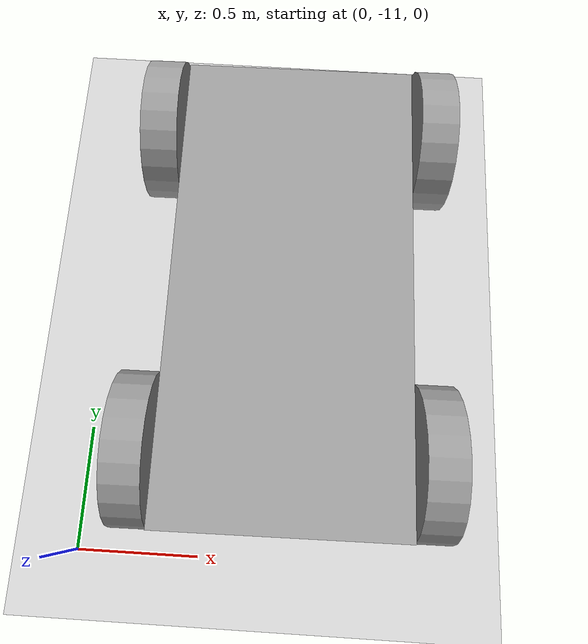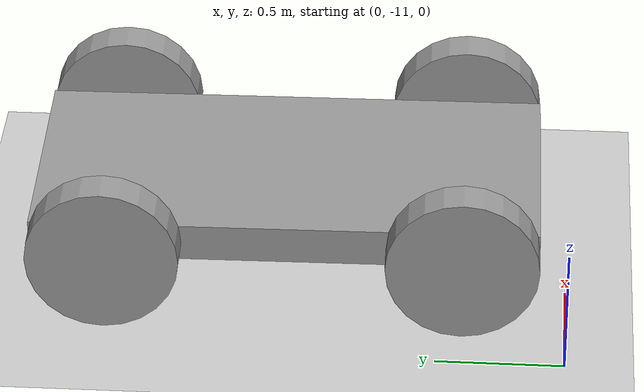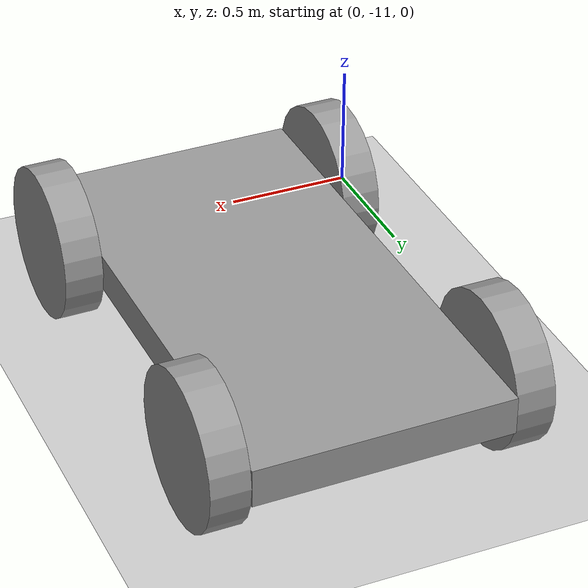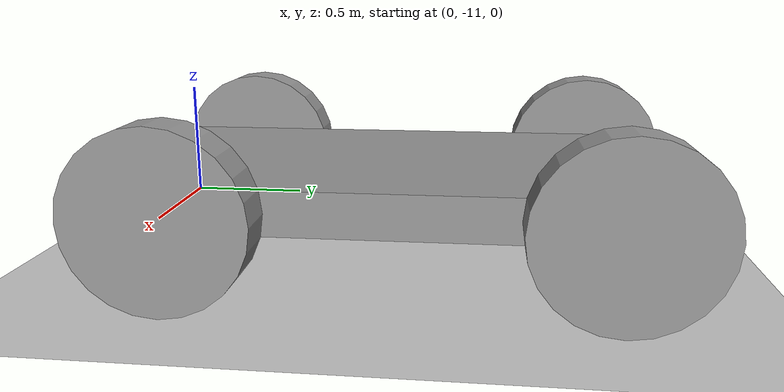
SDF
<sdf version="1.6">
 <world name="default">
  <model name="ground_plane">
   <static>1</static>
   <link name="link">
    <collision name="collision">
     <geometry><plane><normal>0 0 1</normal><size>100 100</size></plane></geometry>
     <surface>
      <contact><collide_bitmask>65535</collide_bitmask></contact>
      <friction><ode><mu>100</mu><mu2>50</mu2></ode></friction>
     </surface>
    </collision>
    <visual name="visual">
     <cast_shadows>0</cast_shadows>
     <geometry><plane><normal>0 0 1</normal><size>100 100</size></plane></geometry>
     <material>
      <script><uri>file://media/materials/scripts/gazebo.material</uri><name>Gazebo/Grey</name></script>
     </material>
    </visual>
   </link>
  </model>
  <model name="myrobot_project1_0">
   <link name="link_0">
    <inertial>
     <mass>1</mass>
     <inertia>
      <ixx>0.166667</ixx>
      <ixy>0</ixy>
      <ixz>0</ixz>
      <iyy>0.166667</iyy>
      <iyz>0</iyz>
      <izz>0.166667</izz>
     </inertia>
    </inertial>
    <pose>-4.00666 -6.32135 0.247721 0 -0 0</pose>
    <visual name="visual">
     <geometry><box><size>1 2 0.15</size></box></geometry>
     <material>
      <lighting>1</lighting>
      <script><uri>file://media/materials/scripts/gazebo.material</uri><name>Gazebo/Grey</name></script>
      <shader type="pixel"><normal_map>__default__</normal_map></shader>
      <ambient>0.3 0.3 0.3 1</ambient>
      <diffuse>0.7 0.7 0.7 1</diffuse>
      <specular>0.01 0.01 0.01 1</specular>
      <emissive>0 0 0 1</emissive>
     </material>
    </visual>
    <collision name="collision">
     <geometry><box><size>1 2 0.15</size></box></geometry>
     <surface>
      <friction>
       <ode><mu>1</mu><mu2>1</mu2><fdir1>0 0 0</fdir1><slip1>0</slip1><slip2>0</slip2></ode>
       <torsional>
        <coefficient>1</coefficient>
        <patch_radius>0</patch_radius>
        <surface_radius>0</surface_radius>
        <use_patch_radius>1</use_patch_radius>
        <ode><slip>0</slip></ode>
       </torsional>
      </friction>
      <bounce><restitution_coefficient>0</restitution_coefficient><threshold>1e+06</threshold></bounce>
      <contact>
       <collide_without_contact>0</collide_without_contact>
       <collide_without_contact_bitmask>1</collide_without_contact_bitmask>
       <collide_bitmask>1</collide_bitmask>
       <ode>
        <soft_cfm>0</soft_cfm>
        <soft_erp>0.2</soft_erp>
        <kp>1e+13</kp>
        <kd>1</kd>
        <max_vel>0.01</max_vel>
        <min_depth>0</min_depth>
       </ode>
       <bullet>
        <split_impulse>1</split_impulse>
        <split_impulse_penetration_threshold>-0.01</split_impulse_penetration_threshold>
        <soft_cfm>0</soft_cfm>
        <soft_erp>0.2</soft_erp>
        <kp>1e+13</kp>
        <kd>1</kd>
       </bullet>
      </contact>
     </surface>
    </collision>
   </link>
   <link name="link_1">
    <inertial>
     <mass>1</mass>
     <inertia><ixx>0.145833</ixx><ixy>0</ixy><ixz>0</ixz><iyy>0.145833</iyy><iyz>0</iyz><izz>0.125</izz></inertia>
    </inertial>
    <pose>-4.58166 -5.62135 0.247721 6e-06 1.5707 6e-06</pose>
    <visual name="visual">
     <geometry><cylinder><radius>0.3</radius><length>0.15</length></cylinder></geometry>
     <material>
      <lighting>1</lighting>
      <script><uri>file://media/materials/scripts/gazebo.material</uri><name>Gazebo/Grey</name></script>
      <shader type="pixel"><normal_map>__default__</normal_map></shader>
      <ambient>0.3 0.3 0.3 1</ambient>
      <diffuse>0.7 0.7 0.7 1</diffuse>
      <specular>0.01 0.01 0.01 1</specular>
      <emissive>0 0 0 1</emissive>
     </material>
    </visual>
    <collision name="collision">
     <geometry><cylinder><radius>0.3</radius><length>0.15</length></cylinder></geometry>
     <surface>
      <friction>
       <ode><mu>1</mu><mu2>1</mu2><fdir1>0 0 0</fdir1><slip1>0</slip1><slip2>0</slip2></ode>
       <torsional>
        <coefficient>1</coefficient>
        <patch_radius>0</patch_radius>
        <surface_radius>0</surface_radius>
        <use_patch_radius>1</use_patch_radius>
        <ode><slip>0</slip></ode>
       </torsional>
      </friction>
      <bounce><restitution_coefficient>0</restitution_coefficient><threshold>1e+06</threshold></bounce>
      <contact>
       <collide_without_contact>0</collide_without_contact>
       <collide_without_contact_bitmask>1</collide_without_contact_bitmask>
       <collide_bitmask>1</collide_bitmask>
       <ode>
        <soft_cfm>0</soft_cfm>
        <soft_erp>0.2</soft_erp>
        <kp>1e+13</kp>
        <kd>1</kd>
        <max_vel>0.01</max_vel>
        <min_depth>0</min_depth>
       </ode>
       <bullet>
        <split_impulse>1</split_impulse>
        <split_impulse_penetration_threshold>-0.01</split_impulse_penetration_threshold>
        <soft_cfm>0</soft_cfm>
        <soft_erp>0.2</soft_erp>
        <kp>1e+13</kp>
        <kd>1</kd>
       </bullet>
      </contact>
     </surface>
    </collision>
   </link>
   <link name="link_1_clone">
    <inertial>
     <mass>1</mass>
     <inertia><ixx>0.145833</ixx><ixy>0</ixy><ixz>0</ixz><iyy>0.145833</iyy><iyz>0</iyz><izz>0.125</izz></inertia>
    </inertial>
    <pose>-3.43166 -5.62135 0.247721 6e-06 1.5707 6e-06</pose>
    <visual name="visual">
     <geometry><cylinder><radius>0.3</radius><length>0.15</length></cylinder></geometry>
     <material>
      <lighting>1</lighting>
      <script><uri>file://media/materials/scripts/gazebo.material</uri><name>Gazebo/Grey</name></script>
      <shader type="pixel"><normal_map>__default__</normal_map></shader>
      <ambient>0.3 0.3 0.3 1</ambient>
      <diffuse>0.7 0.7 0.7 1</diffuse>
      <specular>0.01 0.01 0.01 1</specular>
      <emissive>0 0 0 1</emissive>
     </material>
    </visual>
    <collision name="collision">
     <geometry><cylinder><radius>0.3</radius><length>0.15</length></cylinder></geometry>
     <surface>
      <friction>
       <ode><mu>1</mu><mu2>1</mu2><fdir1>0 0 0</fdir1><slip1>0</slip1><slip2>0</slip2></ode>
       <torsional>
        <coefficient>1</coefficient>
        <patch_radius>0</patch_radius>
        <surface_radius>0</surface_radius>
        <use_patch_radius>1</use_patch_radius>
        <ode><slip>0</slip></ode>
       </torsional>
      </friction>
      <bounce><restitution_coefficient>0</restitution_coefficient><threshold>1e+06</threshold></bounce>
      <contact>
       <collide_without_contact>0</collide_without_contact>
       <collide_without_contact_bitmask>1</collide_without_contact_bitmask>
       <collide_bitmask>1</collide_bitmask>
       <ode>
        <soft_cfm>0</soft_cfm>
        <soft_erp>0.2</soft_erp>
        <kp>1e+13</kp>
        <kd>1</kd>
        <max_vel>0.01</max_vel>
        <min_depth>0</min_depth>
       </ode>
       <bullet>
        <split_impulse>1</split_impulse>
        <split_impulse_penetration_threshold>-0.01</split_impulse_penetration_threshold>
        <soft_cfm>0</soft_cfm>
        <soft_erp>0.2</soft_erp>
        <kp>1e+13</kp>
        <kd>1</kd>
       </bullet>
      </contact>
     </surface>
    </collision>
   </link>
   <link name="link_1_clone_0">
    <inertial>
     <mass>1</mass>
     <inertia><ixx>0.145833</ixx><ixy>0</ixy><ixz>0</ixz><iyy>0.145833</iyy><iyz>0</iyz><izz>0.125</izz></inertia>
    </inertial>
    <pose>-3.43166 -7.02135 0.247721 6e-06 1.5707 6e-06</pose>
    <visual name="visual">
     <geometry><cylinder><radius>0.3</radius><length>0.15</length></cylinder></geometry>
     <material>
      <lighting>1</lighting>
      <script><uri>file://media/materials/scripts/gazebo.material</uri><name>Gazebo/Grey</name></script>
      <shader type="pixel"><normal_map>__default__</normal_map></shader>
      <ambient>0.3 0.3 0.3 1</ambient>
      <diffuse>0.7 0.7 0.7 1</diffuse>
      <specular>0.01 0.01 0.01 1</specular>
      <emissive>0 0 0 1</emissive>
     </material>
    </visual>
    <collision name="collision">
     <geometry><cylinder><radius>0.3</radius><length>0.15</length></cylinder></geometry>
     <surface>
      <friction>
       <ode><mu>1</mu><mu2>1</mu2><fdir1>0 0 0</fdir1><slip1>0</slip1><slip2>0</slip2></ode>
       <torsional>
        <coefficient>1</coefficient>
        <patch_radius>0</patch_radius>
        <surface_radius>0</surface_radius>
        <use_patch_radius>1</use_patch_radius>
        <ode><slip>0</slip></ode>
       </torsional>
      </friction>
      <bounce><restitution_coefficient>0</restitution_coefficient><threshold>1e+06</threshold></bounce>
      <contact>
       <collide_without_contact>0</collide_without_contact>
       <collide_without_contact_bitmask>1</collide_without_contact_bitmask>
       <collide_bitmask>1</collide_bitmask>
       <ode>
        <soft_cfm>0</soft_cfm>
        <soft_erp>0.2</soft_erp>
        <kp>1e+13</kp>
        <kd>1</kd>
        <max_vel>0.01</max_vel>
        <min_depth>0</min_depth>
       </ode>
       <bullet>
        <split_impulse>1</split_impulse>
        <split_impulse_penetration_threshold>-0.01</split_impulse_penetration_threshold>
        <soft_cfm>0</soft_cfm>
        <soft_erp>0.2</soft_erp>
        <kp>1e+13</kp>
        <kd>1</kd>
       </bullet>
      </contact>
     </surface>
    </collision>
   </link>
   <link name="link_1_clone_1">
    <inertial>
     <mass>1</mass>
     <inertia><ixx>0.145833</ixx><ixy>0</ixy><ixz>0</ixz><iyy>0.145833</iyy><iyz>0</iyz><izz>0.125</izz></inertia>
    </inertial>
    <pose>-4.58166 -7.02135 0.247721 6e-06 1.5707 6e-06</pose>
    <visual name="visual">
     <geometry><cylinder><radius>0.3</radius><length>0.15</length></cylinder></geometry>
     <material>
      <lighting>1</lighting>
      <script><uri>file://media/materials/scripts/gazebo.material</uri><name>Gazebo/Grey</name></script>
      <shader type="pixel"><normal_map>__default__</normal_map></shader>
      <ambient>0.3 0.3 0.3 1</ambient>
      <diffuse>0.7 0.7 0.7 1</diffuse>
      <specular>0.01 0.01 0.01 1</specular>
      <emissive>0 0 0 1</emissive>
     </material>
    </visual>
    <collision name="collision">
     <geometry><cylinder><radius>0.3</radius><length>0.15</length></cylinder></geometry>
     <surface>
      <friction>
       <ode><mu>1</mu><mu2>1</mu2><fdir1>0 0 0</fdir1><slip1>0</slip1><slip2>0</slip2></ode>
       <torsional>
        <coefficient>1</coefficient>
        <patch_radius>0</patch_radius>
        <surface_radius>0</surface_radius>
        <use_patch_radius>1</use_patch_radius>
        <ode><slip>0</slip></ode>
       </torsional>
      </friction>
      <bounce><restitution_coefficient>0</restitution_coefficient><threshold>1e+06</threshold></bounce>
      <contact>
       <collide_without_contact>0</collide_without_contact>
       <collide_without_contact_bitmask>1</collide_without_contact_bitmask>
       <collide_bitmask>1</collide_bitmask>
       <ode>
        <soft_cfm>0</soft_cfm>
        <soft_erp>0.2</soft_erp>
        <kp>1e+13</kp>
        <kd>1</kd>
        <max_vel>0.01</max_vel>
        <min_depth>0</min_depth>
       </ode>
       <bullet>
        <split_impulse>1</split_impulse>
        <split_impulse_penetration_threshold>-0.01</split_impulse_penetration_threshold>
        <soft_cfm>0</soft_cfm>
        <soft_erp>0.2</soft_erp>
        <kp>1e+13</kp>
        <kd>1</kd>
       </bullet>
      </contact>
     </surface>
    </collision>
   </link>
   <joint name="link_0_JOINT_0" type="revolute">
    <parent>link_0</parent>
    <child>link_1</child>
    <axis>
     <xyz>0 0 1</xyz>
     <use_parent_model_frame>0</use_parent_model_frame>
     <limit>
      <lower>-1.79769e+308</lower>
      <upper>1.79769e+308</upper>
      <effort>-1</effort>
      <velocity>-1</velocity>
     </limit>
     <dynamics>
      <spring_reference>0</spring_reference>
      <spring_stiffness>0</spring_stiffness>
      <damping>0</damping>
      <friction>0</friction>
     </dynamics>
    </axis>
    <physics>
     <ode><limit><cfm>0</cfm><erp>0.2</erp></limit><suspension><cfm>0</cfm><erp>0.2</erp></suspension></ode>
    </physics>
   </joint>
   <joint name="link_0_JOINT_1" type="revolute">
    <parent>link_0</parent>
    <child>link_1_clone</child>
    <axis>
     <xyz>0 0 1</xyz>
     <use_parent_model_frame>0</use_parent_model_frame>
     <limit>
      <lower>-1.79769e+308</lower>
      <upper>1.79769e+308</upper>
      <effort>-1</effort>
      <velocity>-1</velocity>
     </limit>
     <dynamics>
      <spring_reference>0</spring_reference>
      <spring_stiffness>0</spring_stiffness>
      <damping>0</damping>
      <friction>0</friction>
     </dynamics>
    </axis>
    <physics>
     <ode><limit><cfm>0</cfm><erp>0.2</erp></limit><suspension><cfm>0</cfm><erp>0.2</erp></suspension></ode>
    </physics>
   </joint>
   <joint name="link_0_JOINT_2" type="revolute">
    <parent>link_0</parent>
    <child>link_1_clone_1</child>
    <axis>
     <xyz>0 0 1</xyz>
     <use_parent_model_frame>0</use_parent_model_frame>
     <limit>
      <lower>-1.79769e+308</lower>
      <upper>1.79769e+308</upper>
      <effort>-1</effort>
      <velocity>-1</velocity>
     </limit>
     <dynamics>
      <spring_reference>0</spring_reference>
      <spring_stiffness>0</spring_stiffness>
      <damping>0</damping>
      <friction>0</friction>
     </dynamics>
    </axis>
    <physics>
     <ode><limit><cfm>0</cfm><erp>0.2</erp></limit><suspension><cfm>0</cfm><erp>0.2</erp></suspension></ode>
    </physics>
   </joint>
   <joint name="link_0_JOINT_3" type="revolute">
    <parent>link_0</parent>
    <child>link_1_clone_0</child>
    <axis>
     <xyz>0 0 1</xyz>
     <use_parent_model_frame>0</use_parent_model_frame>
     <limit>
      <lower>-1.79769e+308</lower>
      <upper>1.79769e+308</upper>
      <effort>-1</effort>
      <velocity>-1</velocity>
     </limit>
     <dynamics>
      <spring_reference>0</spring_reference>
      <spring_stiffness>0</spring_stiffness>
      <damping>0</damping>
      <friction>0</friction>
     </dynamics>
    </axis>
    <physics>
     <ode><limit><cfm>0</cfm><erp>0.2</erp></limit><suspension><cfm>0</cfm><erp>0.2</erp></suspension></ode>
    </physics>
   </joint>
   <static>0</static>
   <pose>4.76375 -3.5279 0.052286 0 -0 0.009948</pose>
  </model>
 </world>
</sdf>
